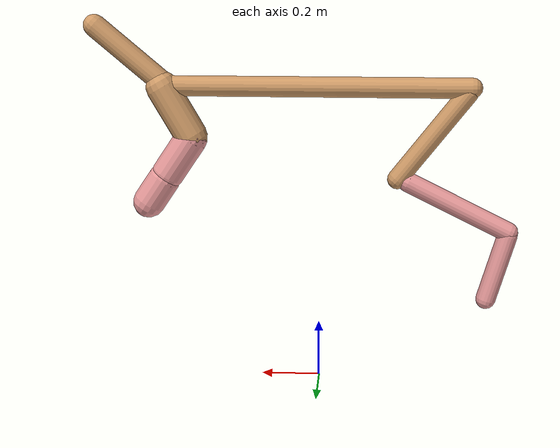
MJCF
<mujoco model="cheetah">
  <compiler angle="radian" coordinate="local" inertiafromgeom="true" settotalmass="14" />
  <default>
    <joint armature=".1" damping=".01" limited="true" solimplimit="0 .8 .03" solreflimit=".02 1" stiffness="8" />
    <geom conaffinity="0" condim="3" contype="1" friction="0.8 .1 .1" rgba="0.8 0.6 .4 1" solimp="0.0 0.8 0.01" solref="0.02 1" />
    <motor ctrllimited="true" ctrlrange="-1 1" />
  </default>
  <size nstack="300000" nuser_geom="1" />
  <option gravity="0 0 -9.81" timestep="0.01" />
  <worldbody>
    <body name="torso" pos="0.0 0.0 1.0266013930214566">
      <joint armature="0" axis="1 0 0" damping="0" limited="false" name="ignorex" pos="0 0 0" stiffness="0" type="slide" />
      <joint armature="0" axis="0 0 1" damping="0" limited="false" name="ignorez" pos="0 0 0" stiffness="0" type="slide" />
      <joint armature="0" axis="0 1 0" damping="0" limited="false" name="ignorey" pos="0 0 0" stiffness="0" type="hinge" />
      <geom fromto="-0.5 0.0 0.0 0.532394657665692 0.0 0.0" name="torso" size="0.03442403829819779" type="capsule" />
      <geom axisangle="0 1 0 .87" name="head" pos="0.6323946576656921 0.0 0.1" size="0.03785454817037701 0.15" type="capsule" />

      <body name="bthigh" pos="-.5 0 0">
        <joint axis="0 1 0" damping="6" name="bthigh" pos="0 0 0" range="-.52 1.05" stiffness="240" type="hinge" />
        <geom axisangle="0 1 0 -3.8" name="bthigh" pos="0.12446965733549481 0.0 -0.16181055453614324" size="0.03405502843111548 0.18513322202382307" type="capsule" />
        <body name="bshin" pos="0.20893931467098958 0.0 -0.31362110907228646">
          <joint axis="0 1 0" damping="4.5" name="bshin" pos="0 0 0" range="-.785 .785" stiffness="180" type="hinge" />
          <geom axisangle="0 1 0 -2.03" name="bshin" pos="-0.17713404659366627 0.0 -0.08856702329683314" rgba="0.9 0.6 0.6 1" size="0.03405502843111548 0.19151712623154113" type="capsule" />
          <body name="bfoot" pos="-0.35426809318733254 0.0 -0.17713404659366627">
            <joint axis="0 1 0" damping="3" name="bfoot" pos="0 0 0" range="-.4 .785" stiffness="120" type="hinge" />
            <geom axisangle="0 1 0 -.27" name="bfoot" pos="0.03768735370473648 0.0 -0.12185577697864797" rgba="0.9 0.6 0.6 1" size="0.03405502843111548 0.1200173991050991" type="capsule" />
            <inertial mass="10" />
          </body>
        </body>
      </body>
      <body name="fthigh" pos="0.5323946576656922 0.0 0.0">
        <joint axis="0 1 0" damping="4.5" name="fthigh" pos="0 0 0" range="-1.5 0.8" stiffness="180" type="hinge" />
        <geom axisangle="0 1 0 .52" name="fthigh" pos="-0.05095987404345062 0.0 -0.08735978407448676" size="0.05489127775025919 0.09521230237093832" type="capsule" />
        <body name="fshin" pos="-0.10191974808690124 0.0 -0.17471956814897352">
          <joint axis="0 1 0" damping="3" name="fshin" pos="0 0 0" range="-1.2 1.1" stiffness="120" type="hinge" />
          <geom axisangle="0 1 0 -.6" name="fshin" pos="0.0473670673577872 0.0 -0.06558517018770535" rgba="0.9 0.6 0.6 1" size="0.05489127775025919 0.07588348910766513" type="capsule" />
          <body name="ffoot" pos="0.0947341347155744 0.0 -0.1311703403754107">
            <joint axis="0 1 0" damping="1.5" name="ffoot" pos="0 0 0" range="-3.1 -0.3" stiffness="60" type="hinge" />
            <geom axisangle="0 1 0 -.6" name="ffoot" pos="0.03424527139411884 0.0 -0.05327042216862932" rgba="0.9 0.6 0.6 1" size="0.05489127775025919 0.050111738089967536" type="capsule" />
            <inertial mass="10" />
          </body>
        </body>
      </body>
    </body>
  </worldbody>
  <actuator>
    <motor gear="120" joint="bthigh" name="bthigh" />
    <motor gear="90" joint="bshin" name="bshin" />
    <motor gear="60" joint="bfoot" name="bfoot" />
    <motor gear="120" joint="fthigh" name="fthigh" />
    <motor gear="60" joint="fshin" name="fshin" />
    <motor gear="30" joint="ffoot" name="ffoot" />
  </actuator>
</mujoco>
